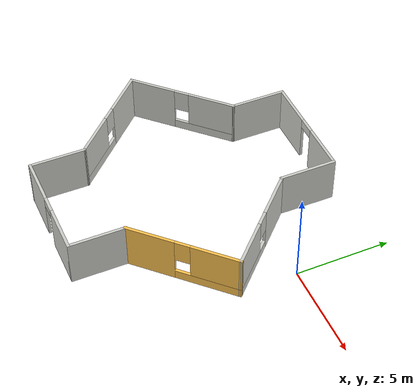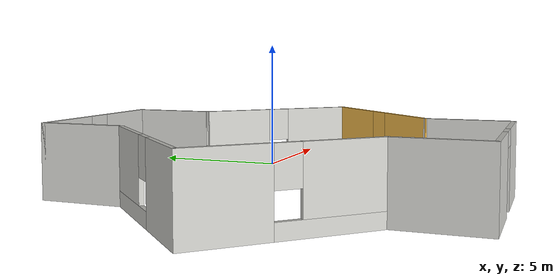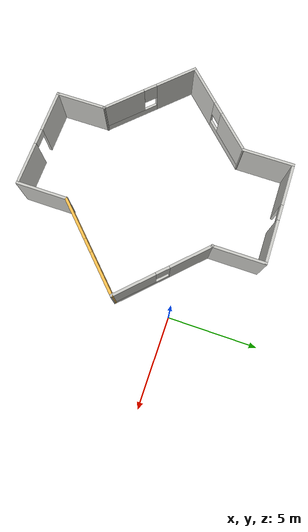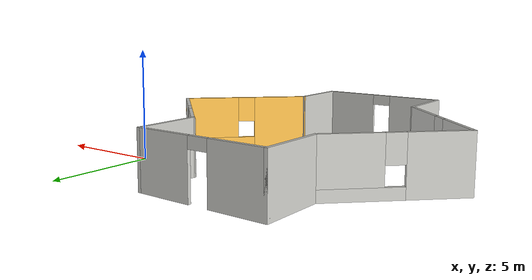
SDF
<?xml version='1.0'?>
<sdf version='1.7'>
  <model name='my_building'>
    <pose>-6.91687 -3.05251 0 0 -0 0</pose>
    <link name='Wall_25'>
      <pose>-4.99329 -2.06829 0 0 -0 -0.785398</pose>
      <visual name='Wall_25_Visual_0'>
        <pose>-1.69957 0 1.25 0 -0 0</pose>
        <geometry>
          <box>
            <size>2.60086 0.15 2.5</size>
          </box>
        </geometry>
        <material>
          <script>
            <uri>file://media/materials/scripts/gazebo.material</uri>
            <name>Gazebo/CeilingTiled</name>
          </script>
          <ambient>1 0.764706 0.305882 1</ambient>
        </material>
        <meta>
          <layer>0</layer>
        </meta>
      </visual>
      <collision name='Wall_25_Collision_0'>
        <geometry>
          <box>
            <size>2.60086 0.15 2.5</size>
          </box>
        </geometry>
        <pose>-1.69957 0 1.25 0 -0 0</pose>
      </collision>
      <visual name='Wall_25_Visual_1'>
        <pose>1.30043 0 0.25 0 -0 0</pose>
        <geometry>
          <box>
            <size>3.39914 0.15 0.5</size>
          </box>
        </geometry>
        <material>
          <script>
            <uri>file://media/materials/scripts/gazebo.material</uri>
            <name>Gazebo/CeilingTiled</name>
          </script>
          <ambient>1 0.764706 0.305882 1</ambient>
        </material>
        <meta>
          <layer>0</layer>
        </meta>
      </visual>
      <collision name='Wall_25_Collision_1'>
        <geometry>
          <box>
            <size>3.39914 0.15 0.5</size>
          </box>
        </geometry>
        <pose>1.30043 0 0.25 0 -0 0</pose>
      </collision>
      <visual name='Wall_25_Visual_2'>
        <pose>1.70043 0 1.5 0 -0 0</pose>
        <geometry>
          <box>
            <size>2.59914 0.15 2</size>
          </box>
        </geometry>
        <material>
          <script>
            <uri>file://media/materials/scripts/gazebo.material</uri>
            <name>Gazebo/CeilingTiled</name>
          </script>
          <ambient>1 0.764706 0.305882 1</ambient>
        </material>
        <meta>
          <layer>0</layer>
        </meta>
      </visual>
      <collision name='Wall_25_Collision_2'>
        <geometry>
          <box>
            <size>2.59914 0.15 2</size>
          </box>
        </geometry>
        <pose>1.70043 0 1.5 0 -0 0</pose>
      </collision>
      <visual name='Wall_25_Visual_3'>
        <pose>0.000856 0 1.9 0 -0 0</pose>
        <geometry>
          <box>
            <size>0.8 0.15 1.2</size>
          </box>
        </geometry>
        <material>
          <script>
            <uri>file://media/materials/scripts/gazebo.material</uri>
            <name>Gazebo/CeilingTiled</name>
          </script>
          <ambient>1 0.764706 0.305882 1</ambient>
        </material>
        <meta>
          <layer>0</layer>
        </meta>
      </visual>
      <collision name='Wall_25_Collision_3'>
        <geometry>
          <box>
            <size>0.8 0.15 1.2</size>
          </box>
        </geometry>
        <pose>0.000856 0 1.9 0 -0 0</pose>
      </collision>
    </link>
    <link name='Wall_27'>
      <pose>4.99329 -2.06829 0 0 -0 0.785398</pose>
      <visual name='Wall_27_Visual_0'>
        <pose>-1.70298 0 1.25 0 -0 0</pose>
        <geometry>
          <box>
            <size>2.59403 0.15 2.5</size>
          </box>
        </geometry>
        <material>
          <script>
            <uri>file://media/materials/scripts/gazebo.material</uri>
            <name>Gazebo/Grey</name>
          </script>
          <ambient>1 0.764706 0.305882 1</ambient>
        </material>
        <meta>
          <layer>0</layer>
        </meta>
      </visual>
      <collision name='Wall_27_Collision_0'>
        <geometry>
          <box>
            <size>2.59403 0.15 2.5</size>
          </box>
        </geometry>
        <pose>-1.70298 0 1.25 0 -0 0</pose>
      </collision>
      <visual name='Wall_27_Visual_1'>
        <pose>1.29702 0 0.25 0 -0 0</pose>
        <geometry>
          <box>
            <size>3.40597 0.15 0.5</size>
          </box>
        </geometry>
        <material>
          <script>
            <uri>file://media/materials/scripts/gazebo.material</uri>
            <name>Gazebo/Grey</name>
          </script>
          <ambient>1 0.764706 0.305882 1</ambient>
        </material>
        <meta>
          <layer>0</layer>
        </meta>
      </visual>
      <collision name='Wall_27_Collision_1'>
        <geometry>
          <box>
            <size>3.40597 0.15 0.5</size>
          </box>
        </geometry>
        <pose>1.29702 0 0.25 0 -0 0</pose>
      </collision>
      <visual name='Wall_27_Visual_2'>
        <pose>1.69702 0 1.5 0 -0 0</pose>
        <geometry>
          <box>
            <size>2.60597 0.15 2</size>
          </box>
        </geometry>
        <material>
          <script>
            <uri>file://media/materials/scripts/gazebo.material</uri>
            <name>Gazebo/Grey</name>
          </script>
          <ambient>1 0.764706 0.305882 1</ambient>
        </material>
        <meta>
          <layer>0</layer>
        </meta>
      </visual>
      <collision name='Wall_27_Collision_2'>
        <geometry>
          <box>
            <size>2.60597 0.15 2</size>
          </box>
        </geometry>
        <pose>1.69702 0 1.5 0 -0 0</pose>
      </collision>
      <visual name='Wall_27_Visual_3'>
        <pose>-0.005967 0 1.9 0 -0 0</pose>
        <geometry>
          <box>
            <size>0.8 0.15 1.2</size>
          </box>
        </geometry>
        <material>
          <script>
            <uri>file://media/materials/scripts/gazebo.material</uri>
            <name>Gazebo/Grey</name>
          </script>
          <ambient>1 0.764706 0.305882 1</ambient>
        </material>
        <meta>
          <layer>0</layer>
        </meta>
      </visual>
      <collision name='Wall_27_Collision_3'>
        <geometry>
          <box>
            <size>0.8 0.15 1.2</size>
          </box>
        </geometry>
        <pose>-0.005967 0 1.9 0 -0 0</pose>
      </collision>
    </link>
    <link name='Wall_29'>
      <collision name='Wall_29_Collision'>
        <geometry>
          <box>
            <size>3 0.15 2.5</size>
          </box>
        </geometry>
        <pose>0 0 1.25 0 -0 0</pose>
      </collision>
      <visual name='Wall_29_Visual'>
        <pose>0 0 1.25 0 -0 0</pose>
        <geometry>
          <box>
            <size>3 0.15 2.5</size>
          </box>
        </geometry>
        <material>
          <script>
            <uri>file://media/materials/scripts/gazebo.material</uri>
            <name>Gazebo/CeilingTiled</name>
          </script>
          <ambient>0.996078 0.47451 0.0196078 1</ambient>
        </material>
        <meta>
          <layer>0</layer>
        </meta>
      </visual>
      <pose>-2.925 -5.56158 0 0 -0 -1.5708</pose>
    </link>
    <link name='Wall_30'>
      <pose>0 -6.98658 0 0 -0 0</pose>
      <visual name='Wall_30_Visual_0'>
        <pose>-1.7295 0 1.25 0 -0 0</pose>
        <geometry>
          <box>
            <size>2.541 0.15 2.5</size>
          </box>
        </geometry>
        <material>
          <script>
            <uri>file://media/materials/scripts/gazebo.material</uri>
            <name>Gazebo/CeilingTiled</name>
          </script>
          <ambient>0.203922 0.396078 0.643137 1</ambient>
        </material>
        <meta>
          <layer>0</layer>
        </meta>
      </visual>
      <collision name='Wall_30_Collision_0'>
        <geometry>
          <box>
            <size>2.541 0.15 2.5</size>
          </box>
        </geometry>
        <pose>-1.7295 0 1.25 0 -0 0</pose>
      </collision>
      <visual name='Wall_30_Visual_1'>
        <pose>1.7205 0 1.25 0 -0 0</pose>
        <geometry>
          <box>
            <size>2.559 0.15 2.5</size>
          </box>
        </geometry>
        <material>
          <script>
            <uri>file://media/materials/scripts/gazebo.material</uri>
            <name>Gazebo/CeilingTiled</name>
          </script>
          <ambient>0.203922 0.396078 0.643137 1</ambient>
        </material>
        <meta>
          <layer>0</layer>
        </meta>
      </visual>
      <collision name='Wall_30_Collision_1'>
        <geometry>
          <box>
            <size>2.559 0.15 2.5</size>
          </box>
        </geometry>
        <pose>1.7205 0 1.25 0 -0 0</pose>
      </collision>
      <visual name='Wall_30_Visual_2'>
        <pose>-0.008996 0 2.25 0 -0 0</pose>
        <geometry>
          <box>
            <size>0.9 0.15 0.5</size>
          </box>
        </geometry>
        <material>
          <script>
            <uri>file://media/materials/scripts/gazebo.material</uri>
            <name>Gazebo/CeilingTiled</name>
          </script>
          <ambient>0.203922 0.396078 0.643137 1</ambient>
        </material>
        <meta>
          <layer>0</layer>
        </meta>
      </visual>
      <collision name='Wall_30_Collision_2'>
        <geometry>
          <box>
            <size>0.9 0.15 0.5</size>
          </box>
        </geometry>
        <pose>-0.008996 0 2.25 0 -0 0</pose>
      </collision>
    </link>
    <link name='Wall_31'>
      <collision name='Wall_31_Collision'>
        <geometry>
          <box>
            <size>3 0.15 2.5</size>
          </box>
        </geometry>
        <pose>0 0 1.25 0 -0 0</pose>
      </collision>
      <visual name='Wall_31_Visual'>
        <pose>0 0 1.25 0 -0 0</pose>
        <geometry>
          <box>
            <size>3 0.15 2.5</size>
          </box>
        </geometry>
        <material>
          <script>
            <uri>file://media/materials/scripts/gazebo.material</uri>
            <name>Gazebo/CeilingTiled</name>
          </script>
          <ambient>0.996078 0.47451 0.0196078 1</ambient>
        </material>
        <meta>
          <layer>0</layer>
        </meta>
      </visual>
      <pose>2.925 -5.56158 0 0 -0 1.5708</pose>
    </link>
    <link name='Wall_33'>
      <collision name='Wall_33_Collision'>
        <geometry>
          <box>
            <size>3 0.15 2.5</size>
          </box>
        </geometry>
        <pose>0 0 1.25 0 -0 0</pose>
      </collision>
      <visual name='Wall_33_Visual'>
        <pose>0 0 1.25 0 -0 0</pose>
        <geometry>
          <box>
            <size>3 0.15 2.5</size>
          </box>
        </geometry>
        <material>
          <script>
            <uri>file://media/materials/scripts/gazebo.material</uri>
            <name>Gazebo/CeilingTiled</name>
          </script>
          <ambient>0.937255 0.160784 0.160784 1</ambient>
        </material>
        <meta>
          <layer>0</layer>
        </meta>
      </visual>
      <pose>-2.925 5.56157 0 0 -0 1.5708</pose>
    </link>
    <link name='Wall_34'>
      <pose>0 6.98657 0 0 -0 0</pose>
      <visual name='Wall_34_Visual_0'>
        <pose>-1.72681 0 1.25 0 -0 0</pose>
        <geometry>
          <box>
            <size>2.54639 0.15 2.5</size>
          </box>
        </geometry>
        <material>
          <script>
            <uri>file://media/materials/scripts/gazebo.material</uri>
            <name>Gazebo/CeilingTiled</name>
          </script>
          <ambient>0.203922 0.396078 0.643137 1</ambient>
        </material>
        <meta>
          <layer>0</layer>
        </meta>
      </visual>
      <collision name='Wall_34_Collision_0'>
        <geometry>
          <box>
            <size>2.54639 0.15 2.5</size>
          </box>
        </geometry>
        <pose>-1.72681 0 1.25 0 -0 0</pose>
      </collision>
      <visual name='Wall_34_Visual_1'>
        <pose>1.72319 0 1.25 0 -0 0</pose>
        <geometry>
          <box>
            <size>2.55361 0.15 2.5</size>
          </box>
        </geometry>
        <material>
          <script>
            <uri>file://media/materials/scripts/gazebo.material</uri>
            <name>Gazebo/CeilingTiled</name>
          </script>
          <ambient>0.203922 0.396078 0.643137 1</ambient>
        </material>
        <meta>
          <layer>0</layer>
        </meta>
      </visual>
      <collision name='Wall_34_Collision_1'>
        <geometry>
          <box>
            <size>2.55361 0.15 2.5</size>
          </box>
        </geometry>
        <pose>1.72319 0 1.25 0 -0 0</pose>
      </collision>
      <visual name='Wall_34_Visual_2'>
        <pose>-0.003614 0 2.25 0 -0 0</pose>
        <geometry>
          <box>
            <size>0.9 0.15 0.5</size>
          </box>
        </geometry>
        <material>
          <script>
            <uri>file://media/materials/scripts/gazebo.material</uri>
            <name>Gazebo/CeilingTiled</name>
          </script>
          <ambient>0.203922 0.396078 0.643137 1</ambient>
        </material>
        <meta>
          <layer>0</layer>
        </meta>
      </visual>
      <collision name='Wall_34_Collision_2'>
        <geometry>
          <box>
            <size>0.9 0.15 0.5</size>
          </box>
        </geometry>
        <pose>-0.003614 0 2.25 0 -0 0</pose>
      </collision>
    </link>
    <link name='Wall_35'>
      <collision name='Wall_35_Collision'>
        <geometry>
          <box>
            <size>3.04023 0.15 2.5</size>
          </box>
        </geometry>
        <pose>0 0 1.25 0 -0 0</pose>
      </collision>
      <visual name='Wall_35_Visual'>
        <pose>0 0 1.25 0 -0 0</pose>
        <geometry>
          <box>
            <size>3.04023 0.15 2.5</size>
          </box>
        </geometry>
        <material>
          <script>
            <uri>file://media/materials/scripts/gazebo.material</uri>
            <name>Gazebo/CeilingTiled</name>
          </script>
          <ambient>0.937255 0.160784 0.160784 1</ambient>
        </material>
        <meta>
          <layer>0</layer>
        </meta>
      </visual>
      <pose>2.925 5.54146 0 0 -0 -1.5708</pose>
    </link>
    <link name='Wall_5'>
      <pose>-4.99329 2.06829 0 0 -0 0.785398</pose>
      <visual name='Wall_5_Visual_0'>
        <pose>-1.70406 0 1.25 0 -0 0</pose>
        <geometry>
          <box>
            <size>2.59188 0.15 2.5</size>
          </box>
        </geometry>
        <material>
          <script>
            <uri>file://media/materials/scripts/gazebo.material</uri>
            <name>Gazebo/CeilingTiled</name>
          </script>
          <ambient>0.435294 0.796078 0.67451 1</ambient>
        </material>
        <meta>
          <layer>0</layer>
        </meta>
      </visual>
      <collision name='Wall_5_Collision_0'>
        <geometry>
          <box>
            <size>2.59188 0.15 2.5</size>
          </box>
        </geometry>
        <pose>-1.70406 0 1.25 0 -0 0</pose>
      </collision>
      <visual name='Wall_5_Visual_1'>
        <pose>1.29594 0 0.25 0 -0 0</pose>
        <geometry>
          <box>
            <size>3.40812 0.15 0.5</size>
          </box>
        </geometry>
        <material>
          <script>
            <uri>file://media/materials/scripts/gazebo.material</uri>
            <name>Gazebo/CeilingTiled</name>
          </script>
          <ambient>0.435294 0.796078 0.67451 1</ambient>
        </material>
        <meta>
          <layer>0</layer>
        </meta>
      </visual>
      <collision name='Wall_5_Collision_1'>
        <geometry>
          <box>
            <size>3.40812 0.15 0.5</size>
          </box>
        </geometry>
        <pose>1.29594 0 0.25 0 -0 0</pose>
      </collision>
      <visual name='Wall_5_Visual_2'>
        <pose>1.69594 0 1.5 0 -0 0</pose>
        <geometry>
          <box>
            <size>2.60812 0.15 2</size>
          </box>
        </geometry>
        <material>
          <script>
            <uri>file://media/materials/scripts/gazebo.material</uri>
            <name>Gazebo/CeilingTiled</name>
          </script>
          <ambient>0.435294 0.796078 0.67451 1</ambient>
        </material>
        <meta>
          <layer>0</layer>
        </meta>
      </visual>
      <collision name='Wall_5_Collision_2'>
        <geometry>
          <box>
            <size>2.60812 0.15 2</size>
          </box>
        </geometry>
        <pose>1.69594 0 1.5 0 -0 0</pose>
      </collision>
      <visual name='Wall_5_Visual_3'>
        <pose>-0.008123 0 1.9 0 -0 0</pose>
        <geometry>
          <box>
            <size>0.8 0.15 1.2</size>
          </box>
        </geometry>
        <material>
          <script>
            <uri>file://media/materials/scripts/gazebo.material</uri>
            <name>Gazebo/CeilingTiled</name>
          </script>
          <ambient>0.435294 0.796078 0.67451 1</ambient>
        </material>
        <meta>
          <layer>0</layer>
        </meta>
      </visual>
      <collision name='Wall_5_Collision_3'>
        <geometry>
          <box>
            <size>0.8 0.15 1.2</size>
          </box>
        </geometry>
        <pose>-0.008123 0 1.9 0 -0 0</pose>
      </collision>
    </link>
    <link name='Wall_7'>
      <pose>4.99329 2.04817 0 0 -0 -0.780512</pose>
      <visual name='Wall_7_Visual_0'>
        <pose>-1.69179 0 1.25 0 -0 0</pose>
        <geometry>
          <box>
            <size>2.58805 0.15 2.5</size>
          </box>
        </geometry>
        <material>
          <script>
            <uri>file://media/materials/scripts/gazebo.material</uri>
            <name>Gazebo/CeilingTiled</name>
          </script>
          <ambient>0.435294 0.796078 0.67451 1</ambient>
        </material>
        <meta>
          <layer>0</layer>
        </meta>
      </visual>
      <collision name='Wall_7_Collision_0'>
        <geometry>
          <box>
            <size>2.58805 0.15 2.5</size>
          </box>
        </geometry>
        <pose>-1.69179 0 1.25 0 -0 0</pose>
      </collision>
      <visual name='Wall_7_Visual_1'>
        <pose>1.29403 0 0.25 0 -0 0</pose>
        <geometry>
          <box>
            <size>3.38357 0.15 0.5</size>
          </box>
        </geometry>
        <material>
          <script>
            <uri>file://media/materials/scripts/gazebo.material</uri>
            <name>Gazebo/CeilingTiled</name>
          </script>
          <ambient>0.435294 0.796078 0.67451 1</ambient>
        </material>
        <meta>
          <layer>0</layer>
        </meta>
      </visual>
      <collision name='Wall_7_Collision_1'>
        <geometry>
          <box>
            <size>3.38357 0.15 0.5</size>
          </box>
        </geometry>
        <pose>1.29403 0 0.25 0 -0 0</pose>
      </collision>
      <visual name='Wall_7_Visual_2'>
        <pose>1.69403 0 1.5 0 -0 0</pose>
        <geometry>
          <box>
            <size>2.58357 0.15 2</size>
          </box>
        </geometry>
        <material>
          <script>
            <uri>file://media/materials/scripts/gazebo.material</uri>
            <name>Gazebo/CeilingTiled</name>
          </script>
          <ambient>0.435294 0.796078 0.67451 1</ambient>
        </material>
        <meta>
          <layer>0</layer>
        </meta>
      </visual>
      <collision name='Wall_7_Collision_2'>
        <geometry>
          <box>
            <size>2.58357 0.15 2</size>
          </box>
        </geometry>
        <pose>1.69403 0 1.5 0 -0 0</pose>
      </collision>
      <visual name='Wall_7_Visual_3'>
        <pose>0.002242 0 1.9 0 -0 0</pose>
        <geometry>
          <box>
            <size>0.8 0.15 1.2</size>
          </box>
        </geometry>
        <material>
          <script>
            <uri>file://media/materials/scripts/gazebo.material</uri>
            <name>Gazebo/CeilingTiled</name>
          </script>
          <ambient>0.435294 0.796078 0.67451 1</ambient>
        </material>
        <meta>
          <layer>0</layer>
        </meta>
      </visual>
      <collision name='Wall_7_Collision_3'>
        <geometry>
          <box>
            <size>0.8 0.15 1.2</size>
          </box>
        </geometry>
        <pose>0.002242 0 1.9 0 -0 0</pose>
      </collision>
    </link>
    <static>1</static>
  </model>
</sdf>
